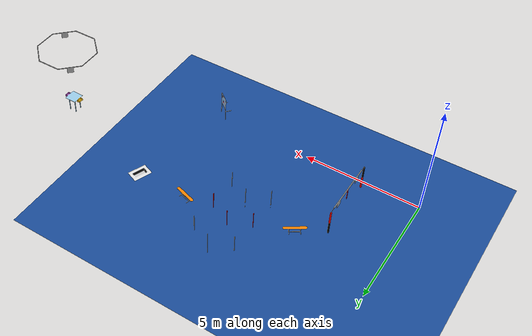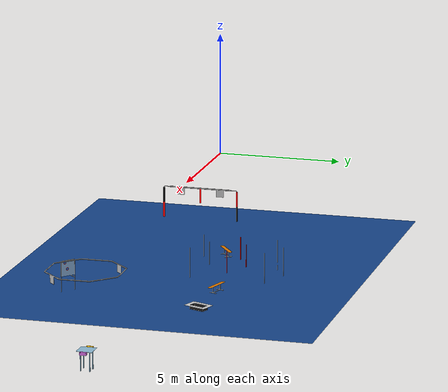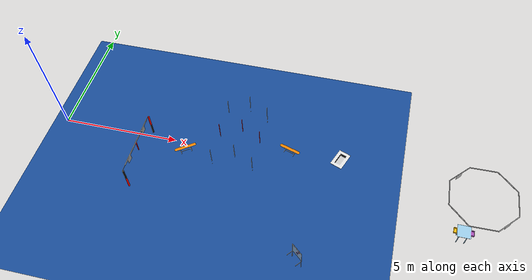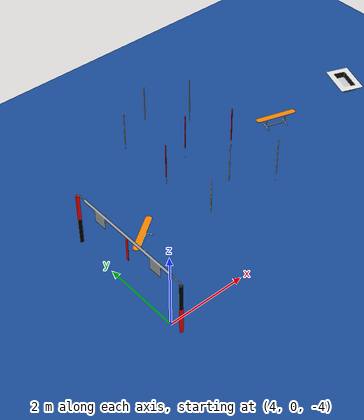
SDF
<sdf version="1.6">
 <world name="default">
  <plugin filename="ignition-gazebo-physics-system" name="gz::sim::systems::Physics"/>
  <plugin filename="ignition-gazebo-scene-broadcaster-system" name="gz::sim::systems::SceneBroadcaster"/>
  <plugin filename="ignition-gazebo-buoyancy-system" name="ignition::gazebo::systems::Buoyancy">
   <uniform_fluid_density>997</uniform_fluid_density>
  </plugin>
  <gravity>0 0 -9.81</gravity>
  <light type="directional" name="sun">
   <pose>0 0 10 0 0 0</pose>
   <diffuse>0.8 0.8 0.8 1</diffuse>
   <specular>0.2 0.2 0.2 1</specular>
   <attenuation>
    <range>1000</range>
    <constant>0.9</constant>
    <linear>0.01</linear>
    <quadratic>0.001</quadratic>
   </attenuation>
   <direction>-0.5 0.1 -0.9</direction>
  </light>
  <model name="Pool Floor">
   <static>true</static>
   <pose>0 0 -3 0 0 0</pose>
   <link name="floor_link">
    <collision name="collision">
     <geometry><plane><normal>0 0 1</normal><size>30 30</size></plane></geometry>
     <surface><friction><ode><mu>0.8</mu><mu2>0.8</mu2></ode></friction></surface>
    </collision>
    <visual name="visual">
     <geometry><plane><normal>0 0 1</normal><size>30 30</size></plane></geometry>
     <material><ambient>0.1 0.3 0.6 1</ambient><diffuse>0.1 0.3 0.6 1</diffuse></material>
    </visual>
   </link>
  </model>
  <model name="Gate">
   <static>true</static>
   <pose>3 0 -2  0 0 1.57</pose>
   <link name="body">
    <visual name="visual"><geometry><mesh><uri>file://gate.dae</uri></mesh></geometry></visual>
   </link>
  </model>
  <model name="Slalom Red 1">
   <static>true</static>
   <pose>6 2.5 -3  0 0 0</pose>
   <link name="body">
    <visual name="visual"><geometry><mesh><uri>file://slalom_red.dae</uri></mesh></geometry></visual>
   </link>
  </model>
  <model name="Slalom Red 2">
   <static>true</static>
   <pose>7 3 -3  0 0 0</pose>
   <link name="body">
    <visual name="visual"><geometry><mesh><uri>file://slalom_red.dae</uri></mesh></geometry></visual>
   </link>
  </model>
  <model name="Slalom Red 3">
   <static>true</static>
   <pose>8 2.5 -3  0 0 0</pose>
   <link name="body">
    <visual name="visual"><geometry><mesh><uri>file://slalom_red.dae</uri></mesh></geometry></visual>
   </link>
  </model>
  <model name="Slalom White 1">
   <static>true</static>
   <pose>6 4 -3  0 0 0</pose>
   <link name="body">
    <visual name="visual"><geometry><mesh><uri>file://slalom_white.dae</uri></mesh></geometry></visual>
   </link>
  </model>
  <model name="Slalom White 2">
   <static>true</static>
   <pose>7 4.5 -3  0 0 0</pose>
   <link name="body">
    <visual name="visual"><geometry><mesh><uri>file://slalom_white.dae</uri></mesh></geometry></visual>
   </link>
  </model>
  <model name="Slalom White 3">
   <static>true</static>
   <pose>8 4 -3  0 0 0</pose>
   <link name="body">
    <visual name="visual"><geometry><mesh><uri>file://slalom_white.dae</uri></mesh></geometry></visual>
   </link>
  </model>
  <model name="Slalom White 4">
   <static>true</static>
   <pose>6 1 -3  0 0 0</pose>
   <link name="body">
    <visual name="visual"><geometry><mesh><uri>file://slalom_white.dae</uri></mesh></geometry></visual>
   </link>
  </model>
  <model name="Slalom White 5">
   <static>true</static>
   <pose>7 1.5 -3  0 0 0</pose>
   <link name="body">
    <visual name="visual"><geometry><mesh><uri>file://slalom_white.dae</uri></mesh></geometry></visual>
   </link>
  </model>
  <model name="Slalom White 6">
   <static>true</static>
   <pose>8 1 -3  0 0 0</pose>
   <link name="body">
    <visual name="visual"><geometry><mesh><uri>file://slalom_white.dae</uri></mesh></geometry></visual>
   </link>
  </model>
  <model name="Path Marker 1">
   <static>true</static>
   <pose>4.5 1.5 -3  0 0 0.6</pose>
   <link name="body">
    <visual name="visual"><geometry><mesh><uri>file://path_marker.dae</uri></mesh></geometry></visual>
   </link>
  </model>
  <model name="Path Marker 2">
   <static>true</static>
   <pose>9.5 2.5 -3  0 0 -0.3</pose>
   <link name="body">
    <visual name="visual"><geometry><mesh><uri>file://path_marker.dae</uri></mesh></geometry></visual>
   </link>
  </model>
  <model name="Dropper Bin">
   <static>true</static>
   <pose>12 2.5 -3  0 0 1.2</pose>
   <link name="body">
    <visual name="visual"><geometry><mesh><uri>file://dropper_bin.dae</uri></mesh></geometry></visual>
   </link>
  </model>
  <model name="Octagon">
   <static>true</static>
   <pose>18 0 0  0 0 0.8</pose>
   <link name="body">
    <visual name="visual"><geometry><mesh><uri>file://octagon.dae</uri></mesh></geometry></visual>
   </link>
  </model>
  <model name="Table">
   <static>true</static>
   <pose>18 0 -3  0 0 0</pose>
   <link name="body">
    <visual name="visual"><geometry><mesh><uri>file://table.dae</uri></mesh></geometry></visual>
   </link>
  </model>
  <model name="Torpedo Target">
   <static>true</static>
   <pose>11 -3 -3  0 0 -0.7</pose>
   <link name="body">
    <visual name="visual"><geometry><mesh><uri>file://torpedo_target.dae</uri></mesh></geometry></visual>
   </link>
  </model>
 </world>
</sdf>
